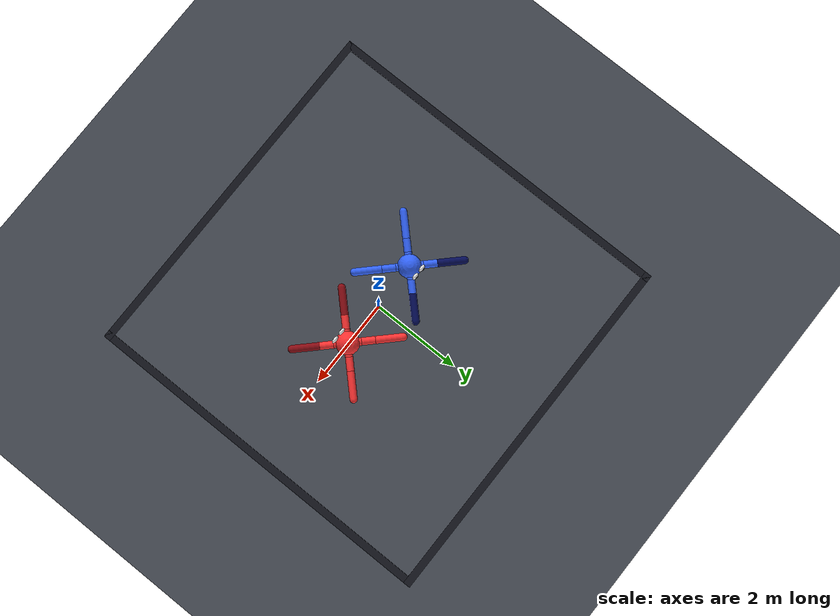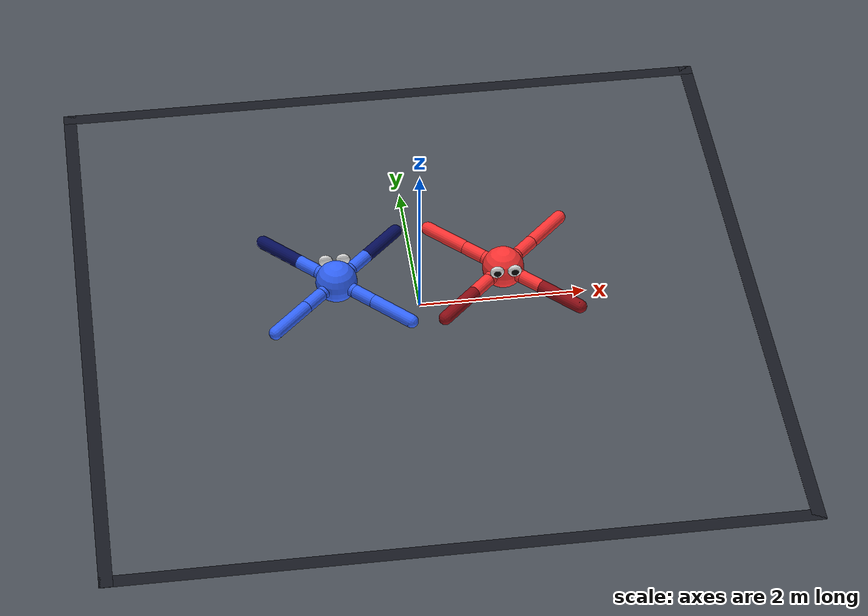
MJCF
<mujoco model="dual_ant_sumo">
  <compiler angle="degree" coordinate="local" inertiafromgeom="true"/>
  <option timestep="0.00833333" integrator="RK4">
    <flag eulerdamp="disable"/>
  </option>

  <default>
    <!-- armature/damping are the MEASURED Isaac ant values (PhysX ignores joint
         damping; armature=0.01), not the Gym ant defaults (1/1). See transfer_cfg.py. -->
    <default class="ant">
      <joint armature="0.01" damping="0" limited="true" type="hinge"/>
      <geom condim="3" density="5.0" friction="1 0.5 0.5" margin="0.01"
            size="0.08" type="capsule"/>
      <default class="me">
        <geom contype="1" conaffinity="2" rgba="0.2 0.4 1.0 1"/>
        <default class="me_front">
          <geom rgba="0.02 0.05 0.35 1"/>
        </default>
      </default>
      <default class="foe">
        <geom contype="2" conaffinity="1" rgba="1.0 0.2 0.2 1"/>
        <default class="foe_front">
          <geom rgba="0.55 0.05 0.08 1"/>
        </default>
      </default>
      <!-- Eyes: render-only, like the Isaac play scripts' decorate_ants(). No collision bits
           and zero mass, so the dynamics are exactly those of the eyeless model. -->
      <default class="eye">
        <geom type="ellipsoid" contype="0" conaffinity="0" mass="0" rgba="0.95 0.95 0.95 1"/>
      </default>
      <default class="pupil">
        <geom type="ellipsoid" contype="0" conaffinity="0" mass="0" rgba="0.02 0.02 0.02 1"/>
      </default>
    </default>
  </default>

  <asset>
    <texture type="skybox" builtin="gradient" rgb1="0.5 0.7 0.9" rgb2="0.1 0.15 0.25"
             width="256" height="256"/>
    <texture name="grid" type="2d" builtin="checker" rgb1="0.25 0.27 0.30"
             rgb2="0.32 0.34 0.38" width="300" height="300" mark="edge" markrgb="0.5 0.5 0.5"/>
    <material name="grid" texture="grid" texrepeat="12 12" texuniform="true" reflectance="0.1"/>
  </asset>

  <worldbody>
    <light name="light" pos="0 0 12" dir="0 0 -1" diffuse="0.8 0.8 0.8" castshadow="false"/>
    <geom name="floor" type="plane" pos="0 0 0" size="14 14 0.1" material="grid"
          contype="3" conaffinity="3" condim="3" friction="1 0.5 0.5"/>

    <!-- Boundary at +-4: a line painted on the floor like the Isaac clips (visual only, no
         collision; the web player hides it and draws its own at the current arena size) -->
    <geom name="wall_yp" type="box" pos="0 4 0.005"  size="4.08 0.08 0.005" contype="0" conaffinity="0" rgba="0.002 0.004 0.03 0.6"/>
    <geom name="wall_yn" type="box" pos="0 -4 0.005" size="4.08 0.08 0.005" contype="0" conaffinity="0" rgba="0.002 0.004 0.03 0.6"/>
    <geom name="wall_xp" type="box" pos="4 0 0.005"  size="0.08 4.08 0.005" contype="0" conaffinity="0" rgba="0.002 0.004 0.03 0.6"/>
    <geom name="wall_xn" type="box" pos="-4 0 0.005" size="0.08 4.08 0.005" contype="0" conaffinity="0" rgba="0.002 0.004 0.03 0.6"/>

    <!-- ===================== ME ant (blue, navy front feet) ===================== -->
    <body name="me_torso" pos="-1 0 0.5" quat="1 0 0 0" childclass="me">
      <freejoint name="me_root"/>
      <geom name="me_torso_geom" type="sphere" size="0.25"/>
      <!-- Eyes on the upper front (+y) of the torso: flattened white domes with black pupils. -->
      <geom name="me_eye_l" class="eye" pos="-0.105 0.228 0.13" size="0.085 0.03825 0.085"/>
      <geom name="me_eye_r" class="eye" pos="0.105 0.228 0.13" size="0.085 0.03825 0.085"/>
      <geom name="me_pupil_l" class="pupil" pos="-0.105 0.256688 0.13" size="0.045 0.02025 0.045"/>
      <geom name="me_pupil_r" class="pupil" pos="0.105 0.256688 0.13" size="0.045 0.02025 0.045"/>
      <body name="me_fl_leg">
        <geom fromto="0 0 0 0.2 0.2 0"/>
        <body name="me_fl_aux" pos="0.2 0.2 0">
          <joint name="me_front_left_leg" axis="0 0 1" range="-40 40"/>
          <geom fromto="0 0 0 0.2 0.2 0"/>
          <body name="me_front_left_foot_body" pos="0.2 0.2 0">
            <joint name="me_front_left_foot" axis="-1 1 0" range="30 100"/>
            <geom class="me_front" fromto="0 0 0 0.4 0.4 0"/>
          </body>
        </body>
      </body>
      <body name="me_fr_leg">
        <geom fromto="0 0 0 -0.2 0.2 0"/>
        <body name="me_fr_aux" pos="-0.2 0.2 0">
          <joint name="me_front_right_leg" axis="0 0 1" range="-40 40"/>
          <geom fromto="0 0 0 -0.2 0.2 0"/>
          <body name="me_front_right_foot_body" pos="-0.2 0.2 0">
            <joint name="me_front_right_foot" axis="1 1 0" range="-100 -30"/>
            <geom class="me_front" fromto="0 0 0 -0.4 0.4 0"/>
          </body>
        </body>
      </body>
      <body name="me_lb_leg">
        <geom fromto="0 0 0 -0.2 -0.2 0"/>
        <body name="me_lb_aux" pos="-0.2 -0.2 0">
          <joint name="me_left_back_leg" axis="0 0 1" range="-40 40"/>
          <geom fromto="0 0 0 -0.2 -0.2 0"/>
          <body name="me_left_back_foot_body" pos="-0.2 -0.2 0">
            <joint name="me_left_back_foot" axis="-1 1 0" range="-100 -30"/>
            <geom fromto="0 0 0 -0.4 -0.4 0"/>
          </body>
        </body>
      </body>
      <body name="me_rb_leg">
        <geom fromto="0 0 0 0.2 -0.2 0"/>
        <body name="me_rb_aux" pos="0.2 -0.2 0">
          <joint name="me_right_back_leg" axis="0 0 1" range="-40 40"/>
          <geom fromto="0 0 0 0.2 -0.2 0"/>
          <body name="me_right_back_foot_body" pos="0.2 -0.2 0">
            <joint name="me_right_back_foot" axis="1 1 0" range="30 100"/>
            <geom fromto="0 0 0 0.4 -0.4 0"/>
          </body>
        </body>
      </body>
    </body>

    <!-- ===================== FOE ant (red, crimson front feet) ===================== -->
    <body name="foe_torso" pos="1 0 0.5" quat="0 0 0 1" childclass="foe">
      <freejoint name="foe_root"/>
      <geom name="foe_torso_geom" type="sphere" size="0.25"/>
      <!-- Eyes on the upper front (+y) of the torso: flattened white domes with black pupils. -->
      <geom name="foe_eye_l" class="eye" pos="-0.105 0.228 0.13" size="0.085 0.03825 0.085"/>
      <geom name="foe_eye_r" class="eye" pos="0.105 0.228 0.13" size="0.085 0.03825 0.085"/>
      <geom name="foe_pupil_l" class="pupil" pos="-0.105 0.256688 0.13" size="0.045 0.02025 0.045"/>
      <geom name="foe_pupil_r" class="pupil" pos="0.105 0.256688 0.13" size="0.045 0.02025 0.045"/>
      <body name="foe_fl_leg">
        <geom fromto="0 0 0 0.2 0.2 0"/>
        <body name="foe_fl_aux" pos="0.2 0.2 0">
          <joint name="foe_front_left_leg" axis="0 0 1" range="-40 40"/>
          <geom fromto="0 0 0 0.2 0.2 0"/>
          <body name="foe_front_left_foot_body" pos="0.2 0.2 0">
            <joint name="foe_front_left_foot" axis="-1 1 0" range="30 100"/>
            <geom class="foe_front" fromto="0 0 0 0.4 0.4 0"/>
          </body>
        </body>
      </body>
      <body name="foe_fr_leg">
        <geom fromto="0 0 0 -0.2 0.2 0"/>
        <body name="foe_fr_aux" pos="-0.2 0.2 0">
          <joint name="foe_front_right_leg" axis="0 0 1" range="-40 40"/>
          <geom fromto="0 0 0 -0.2 0.2 0"/>
          <body name="foe_front_right_foot_body" pos="-0.2 0.2 0">
            <joint name="foe_front_right_foot" axis="1 1 0" range="-100 -30"/>
            <geom class="foe_front" fromto="0 0 0 -0.4 0.4 0"/>
          </body>
        </body>
      </body>
      <body name="foe_lb_leg">
        <geom fromto="0 0 0 -0.2 -0.2 0"/>
        <body name="foe_lb_aux" pos="-0.2 -0.2 0">
          <joint name="foe_left_back_leg" axis="0 0 1" range="-40 40"/>
          <geom fromto="0 0 0 -0.2 -0.2 0"/>
          <body name="foe_left_back_foot_body" pos="-0.2 -0.2 0">
            <joint name="foe_left_back_foot" axis="-1 1 0" range="-100 -30"/>
            <geom fromto="0 0 0 -0.4 -0.4 0"/>
          </body>
        </body>
      </body>
      <body name="foe_rb_leg">
        <geom fromto="0 0 0 0.2 -0.2 0"/>
        <body name="foe_rb_aux" pos="0.2 -0.2 0">
          <joint name="foe_right_back_leg" axis="0 0 1" range="-40 40"/>
          <geom fromto="0 0 0 0.2 -0.2 0"/>
          <body name="foe_right_back_foot_body" pos="0.2 -0.2 0">
            <joint name="foe_right_back_foot" axis="1 1 0" range="30 100"/>
            <geom fromto="0 0 0 0.4 -0.4 0"/>
          </body>
        </body>
      </body>
    </body>
  </worldbody>

  <!-- gear=1: action->torque scaling is applied in code (transfer_cfg.ACTION_TORQUE_SCALE),
       so the policy's clipped action IS the joint torque. -->
  <actuator>
    <motor name="me_front_left_leg" joint="me_front_left_leg" gear="1" ctrllimited="false"/>
    <motor name="me_front_right_leg" joint="me_front_right_leg" gear="1" ctrllimited="false"/>
    <motor name="me_left_back_leg" joint="me_left_back_leg" gear="1" ctrllimited="false"/>
    <motor name="me_right_back_leg" joint="me_right_back_leg" gear="1" ctrllimited="false"/>
    <motor name="me_front_left_foot" joint="me_front_left_foot" gear="1" ctrllimited="false"/>
    <motor name="me_front_right_foot" joint="me_front_right_foot" gear="1" ctrllimited="false"/>
    <motor name="me_left_back_foot" joint="me_left_back_foot" gear="1" ctrllimited="false"/>
    <motor name="me_right_back_foot" joint="me_right_back_foot" gear="1" ctrllimited="false"/>

    <motor name="foe_front_left_leg" joint="foe_front_left_leg" gear="1" ctrllimited="false"/>
    <motor name="foe_front_right_leg" joint="foe_front_right_leg" gear="1" ctrllimited="false"/>
    <motor name="foe_left_back_leg" joint="foe_left_back_leg" gear="1" ctrllimited="false"/>
    <motor name="foe_right_back_leg" joint="foe_right_back_leg" gear="1" ctrllimited="false"/>
    <motor name="foe_front_left_foot" joint="foe_front_left_foot" gear="1" ctrllimited="false"/>
    <motor name="foe_front_right_foot" joint="foe_front_right_foot" gear="1" ctrllimited="false"/>
    <motor name="foe_left_back_foot" joint="foe_left_back_foot" gear="1" ctrllimited="false"/>
    <motor name="foe_right_back_foot" joint="foe_right_back_foot" gear="1" ctrllimited="false"/>
  </actuator>
</mujoco>
